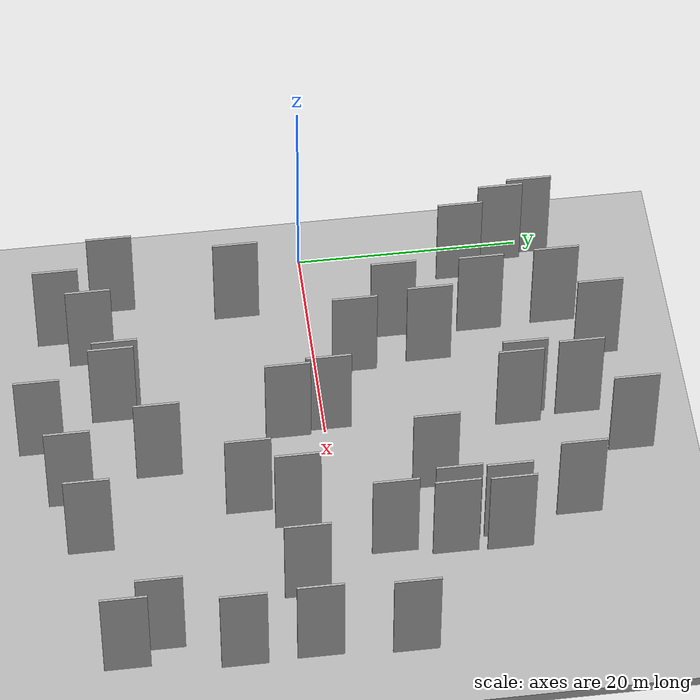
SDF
<?xml version="1.0" encoding="utf-8"?>

<sdf version="1.6">

   <world name="default">

      <gui fullscreen="0">

         <camera name="user_camera">

            <pose>-15 0 4.57585 0 0 0</pose>

            <view_controller>orbit</view_controller>

         </camera>

      </gui>

      <scene>

         <sky>

           <clouds>

             <speed>12</speed>

           </clouds>

         </sky>

         <ambient>0.4 0.4 0.4 1</ambient>

         <background>0.7 0.7 0.7 1</background>

         <shadows>1</shadows>

      </scene>

      <gravity>0 0 -9.8066</gravity>

      <magnetic_field>6e-06 2.3e-05 -4.2e-05</magnetic_field>

      <physics default="0" name="default_physics" type="ode">

         <ode>

            <solver>

               <type>quick</type>

               <iters>10</iters>

               <sor>1.0</sor>

               <use_dynamic_moi_rescaling>0</use_dynamic_moi_rescaling>

            </solver>

            <constraints>

               <cfm>0</cfm>

               <erp>0.2</erp>

               <contact_max_correcting_vel>100</contact_max_correcting_vel>

               <contact_surface_layer>0.001</contact_surface_layer>

            </constraints>

         </ode>

         <max_step_size>0.004</max_step_size>

         <real_time_factor>1</real_time_factor>

         <real_time_update_rate>250</real_time_update_rate>

      </physics>

      <light name="sun" type="directional">

         <cast_shadows>1</cast_shadows>

         <pose>0 0 10 0 0 0</pose>

         <diffuse>0.8 0.8 0.8 1</diffuse>

         <specular>0.2 0.2 0.2 1</specular>

         <attenuation>

            <range>1000</range>

            <constant>0.9</constant>

            <linear>0.01</linear>

            <quadratic>0.001</quadratic>

         </attenuation>

         <direction>-0.5 0.1 -0.9</direction>

      </light>

      <include>

         <name>ground_plane_1</name>

         <uri>model://HANNAS_ground_plane</uri>

         <pose>0 0 0  0 0 0</pose>

      </include>

      <include>

         <name>ground_plane_2</name>

         <uri>model://HANNAS_ground_plane</uri>

         <pose>100 0 0  0 0 0</pose>

      </include>

      <model name="HANNAS_wall_1">

         <static>1</static>

         <pose frame="">43.2385 -16.6148 2.5 0.000000 0.000000 1.570796</pose>

         <link name="link">

            <pose frame="">0 0 5.00 0 0 0</pose>

            <collision name="collision">

               <geometry>

                  <box>

                     <size>4.00 0.2 10.00</size>

                  </box>

               </geometry>

               <max_contacts>10</max_contacts>

               <surface>

                  <contact>

                     <ode/>

                  </contact>

                  <bounce/>

                  <friction>

                     <torsional>

                        <ode/>

                     </torsional>

                     <ode/>

                  </friction>

               </surface>

            </collision>

            <visual name="visual">

               <cast_shadows>0</cast_shadows>

               <geometry>

                  <box>

                     <size>4.00 0.2 10.00</size>

                  </box>

               </geometry>

               <material>

                  <script>

                     <uri>model://HANNAS_wall/materials/scripts</uri>

                     <uri>model://HANNAS_wall/materials/textures</uri>

                     <name>vrc/HANNAS_wall</name>

                  </script>

               </material>

            </visual>

            <self_collide>0</self_collide>

            <enable_wind>0</enable_wind>

            <kinematic>0</kinematic>

         </link>

      </model>

      <model name="HANNAS_wall_2">

         <static>1</static>

         <pose frame="">21.4742 0.1918 2.5 0.000000 0.000000 1.570796</pose>

         <link name="link">

            <pose frame="">0 0 5.00 0 0 0</pose>

            <collision name="collision">

               <geometry>

                  <box>

                     <size>4.00 0.2 10.00</size>

                  </box>

               </geometry>

               <max_contacts>10</max_contacts>

               <surface>

                  <contact>

                     <ode/>

                  </contact>

                  <bounce/>

                  <friction>

                     <torsional>

                        <ode/>

                     </torsional>

                     <ode/>

                  </friction>

               </surface>

            </collision>

            <visual name="visual">

               <cast_shadows>0</cast_shadows>

               <geometry>

                  <box>

                     <size>4.00 0.2 10.00</size>

                  </box>

               </geometry>

               <material>

                  <script>

                     <uri>model://HANNAS_wall/materials/scripts</uri>

                     <uri>model://HANNAS_wall/materials/textures</uri>

                     <name>vrc/HANNAS_wall</name>

                  </script>

               </material>

            </visual>

            <self_collide>0</self_collide>

            <enable_wind>0</enable_wind>

            <kinematic>0</kinematic>

         </link>

      </model>

      <model name="HANNAS_wall_3">

         <static>1</static>

         <pose frame="">11.6124 7.1430 2.5 0.000000 0.000000 1.570796</pose>

         <link name="link">

            <pose frame="">0 0 5.00 0 0 0</pose>

            <collision name="collision">

               <geometry>

                  <box>

                     <size>4.00 0.2 10.00</size>

                  </box>

               </geometry>

               <max_contacts>10</max_contacts>

               <surface>

                  <contact>

                     <ode/>

                  </contact>

                  <bounce/>

                  <friction>

                     <torsional>

                        <ode/>

                     </torsional>

                     <ode/>

                  </friction>

               </surface>

            </collision>

            <visual name="visual">

               <cast_shadows>0</cast_shadows>

               <geometry>

                  <box>

                     <size>4.00 0.2 10.00</size>

                  </box>

               </geometry>

               <material>

                  <script>

                     <uri>model://HANNAS_wall/materials/scripts</uri>

                     <uri>model://HANNAS_wall/materials/textures</uri>

                     <name>vrc/HANNAS_wall</name>

                  </script>

               </material>

            </visual>

            <self_collide>0</self_collide>

            <enable_wind>0</enable_wind>

            <kinematic>0</kinematic>

         </link>

      </model>

      <model name="HANNAS_wall_4">

         <static>1</static>

         <pose frame="">3.8051 17.7990 2.5 0.000000 0.000000 1.570796</pose>

         <link name="link">

            <pose frame="">0 0 5.00 0 0 0</pose>

            <collision name="collision">

               <geometry>

                  <box>

                     <size>4.00 0.2 10.00</size>

                  </box>

               </geometry>

               <max_contacts>10</max_contacts>

               <surface>

                  <contact>

                     <ode/>

                  </contact>

                  <bounce/>

                  <friction>

                     <torsional>

                        <ode/>

                     </torsional>

                     <ode/>

                  </friction>

               </surface>

            </collision>

            <visual name="visual">

               <cast_shadows>0</cast_shadows>

               <geometry>

                  <box>

                     <size>4.00 0.2 10.00</size>

                  </box>

               </geometry>

               <material>

                  <script>

                     <uri>model://HANNAS_wall/materials/scripts</uri>

                     <uri>model://HANNAS_wall/materials/textures</uri>

                     <name>vrc/HANNAS_wall</name>

                  </script>

               </material>

            </visual>

            <self_collide>0</self_collide>

            <enable_wind>0</enable_wind>

            <kinematic>0</kinematic>

         </link>

      </model>

      <model name="HANNAS_wall_5">

         <static>1</static>

         <pose frame="">17.5245 -18.0803 2.5 0.000000 0.000000 1.570796</pose>

         <link name="link">

            <pose frame="">0 0 5.00 0 0 0</pose>

            <collision name="collision">

               <geometry>

                  <box>

                     <size>4.00 0.2 10.00</size>

                  </box>

               </geometry>

               <max_contacts>10</max_contacts>

               <surface>

                  <contact>

                     <ode/>

                  </contact>

                  <bounce/>

                  <friction>

                     <torsional>

                        <ode/>

                     </torsional>

                     <ode/>

                  </friction>

               </surface>

            </collision>

            <visual name="visual">

               <cast_shadows>0</cast_shadows>

               <geometry>

                  <box>

                     <size>4.00 0.2 10.00</size>

                  </box>

               </geometry>

               <material>

                  <script>

                     <uri>model://HANNAS_wall/materials/scripts</uri>

                     <uri>model://HANNAS_wall/materials/textures</uri>

                     <name>vrc/HANNAS_wall</name>

                  </script>

               </material>

            </visual>

            <self_collide>0</self_collide>

            <enable_wind>0</enable_wind>

            <kinematic>0</kinematic>

         </link>

      </model>

      <model name="HANNAS_wall_6">

         <static>1</static>

         <pose frame="">14.7290 9.9586 2.5 0.000000 0.000000 1.570796</pose>

         <link name="link">

            <pose frame="">0 0 5.00 0 0 0</pose>

            <collision name="collision">

               <geometry>

                  <box>

                     <size>4.00 0.2 10.00</size>

                  </box>

               </geometry>

               <max_contacts>10</max_contacts>

               <surface>

                  <contact>

                     <ode/>

                  </contact>

                  <bounce/>

                  <friction>

                     <torsional>

                        <ode/>

                     </torsional>

                     <ode/>

                  </friction>

               </surface>

            </collision>

            <visual name="visual">

               <cast_shadows>0</cast_shadows>

               <geometry>

                  <box>

                     <size>4.00 0.2 10.00</size>

                  </box>

               </geometry>

               <material>

                  <script>

                     <uri>model://HANNAS_wall/materials/scripts</uri>

                     <uri>model://HANNAS_wall/materials/textures</uri>

                     <name>vrc/HANNAS_wall</name>

                  </script>

               </material>

            </visual>

            <self_collide>0</self_collide>

            <enable_wind>0</enable_wind>

            <kinematic>0</kinematic>

         </link>

      </model>

      <model name="HANNAS_wall_7">

         <static>1</static>

         <pose frame="">22.2468 22.2439 2.5 0.000000 0.000000 1.570796</pose>

         <link name="link">

            <pose frame="">0 0 5.00 0 0 0</pose>

            <collision name="collision">

               <geometry>

                  <box>

                     <size>4.00 0.2 10.00</size>

                  </box>

               </geometry>

               <max_contacts>10</max_contacts>

               <surface>

                  <contact>

                     <ode/>

                  </contact>

                  <bounce/>

                  <friction>

                     <torsional>

                        <ode/>

                     </torsional>

                     <ode/>

                  </friction>

               </surface>

            </collision>

            <visual name="visual">

               <cast_shadows>0</cast_shadows>

               <geometry>

                  <box>

                     <size>4.00 0.2 10.00</size>

                  </box>

               </geometry>

               <material>

                  <script>

                     <uri>model://HANNAS_wall/materials/scripts</uri>

                     <uri>model://HANNAS_wall/materials/textures</uri>

                     <name>vrc/HANNAS_wall</name>

                  </script>

               </material>

            </visual>

            <self_collide>0</self_collide>

            <enable_wind>0</enable_wind>

            <kinematic>0</kinematic>

         </link>

      </model>

      <model name="HANNAS_wall_8">

         <static>1</static>

         <pose frame="">15.1997 3.2499 2.5 0.000000 0.000000 1.570796</pose>

         <link name="link">

            <pose frame="">0 0 5.00 0 0 0</pose>

            <collision name="collision">

               <geometry>

                  <box>

                     <size>4.00 0.2 10.00</size>

                  </box>

               </geometry>

               <max_contacts>10</max_contacts>

               <surface>

                  <contact>

                     <ode/>

                  </contact>

                  <bounce/>

                  <friction>

                     <torsional>

                        <ode/>

                     </torsional>

                     <ode/>

                  </friction>

               </surface>

            </collision>

            <visual name="visual">

               <cast_shadows>0</cast_shadows>

               <geometry>

                  <box>

                     <size>4.00 0.2 10.00</size>

                  </box>

               </geometry>

               <material>

                  <script>

                     <uri>model://HANNAS_wall/materials/scripts</uri>

                     <uri>model://HANNAS_wall/materials/textures</uri>

                     <name>vrc/HANNAS_wall</name>

                  </script>

               </material>

            </visual>

            <self_collide>0</self_collide>

            <enable_wind>0</enable_wind>

            <kinematic>0</kinematic>

         </link>

      </model>

      <model name="HANNAS_wall_9">

         <static>1</static>

         <pose frame="">15.8078 24.9222 2.5 0.000000 0.000000 1.570796</pose>

         <link name="link">

            <pose frame="">0 0 5.00 0 0 0</pose>

            <collision name="collision">

               <geometry>

                  <box>

                     <size>4.00 0.2 10.00</size>

                  </box>

               </geometry>

               <max_contacts>10</max_contacts>

               <surface>

                  <contact>

                     <ode/>

                  </contact>

                  <bounce/>

                  <friction>

                     <torsional>

                        <ode/>

                     </torsional>

                     <ode/>

                  </friction>

               </surface>

            </collision>

            <visual name="visual">

               <cast_shadows>0</cast_shadows>

               <geometry>

                  <box>

                     <size>4.00 0.2 10.00</size>

                  </box>

               </geometry>

               <material>

                  <script>

                     <uri>model://HANNAS_wall/materials/scripts</uri>

                     <uri>model://HANNAS_wall/materials/textures</uri>

                     <name>vrc/HANNAS_wall</name>

                  </script>

               </material>

            </visual>

            <self_collide>0</self_collide>

            <enable_wind>0</enable_wind>

            <kinematic>0</kinematic>

         </link>

      </model>

      <model name="HANNAS_wall_10">

         <static>1</static>

         <pose frame="">35.5209 4.2593 2.5 0.000000 0.000000 1.570796</pose>

         <link name="link">

            <pose frame="">0 0 5.00 0 0 0</pose>

            <collision name="collision">

               <geometry>

                  <box>

                     <size>4.00 0.2 10.00</size>

                  </box>

               </geometry>

               <max_contacts>10</max_contacts>

               <surface>

                  <contact>

                     <ode/>

                  </contact>

                  <bounce/>

                  <friction>

                     <torsional>

                        <ode/>

                     </torsional>

                     <ode/>

                  </friction>

               </surface>

            </collision>

            <visual name="visual">

               <cast_shadows>0</cast_shadows>

               <geometry>

                  <box>

                     <size>4.00 0.2 10.00</size>

                  </box>

               </geometry>

               <material>

                  <script>

                     <uri>model://HANNAS_wall/materials/scripts</uri>

                     <uri>model://HANNAS_wall/materials/textures</uri>

                     <name>vrc/HANNAS_wall</name>

                  </script>

               </material>

            </visual>

            <self_collide>0</self_collide>

            <enable_wind>0</enable_wind>

            <kinematic>0</kinematic>

         </link>

      </model>

      <model name="HANNAS_wall_11">

         <static>1</static>

         <pose frame="">21.7479 17.3656 2.5 0.000000 0.000000 1.570796</pose>

         <link name="link">

            <pose frame="">0 0 5.00 0 0 0</pose>

            <collision name="collision">

               <geometry>

                  <box>

                     <size>4.00 0.2 10.00</size>

                  </box>

               </geometry>

               <max_contacts>10</max_contacts>

               <surface>

                  <contact>

                     <ode/>

                  </contact>

                  <bounce/>

                  <friction>

                     <torsional>

                        <ode/>

                     </torsional>

                     <ode/>

                  </friction>

               </surface>

            </collision>

            <visual name="visual">

               <cast_shadows>0</cast_shadows>

               <geometry>

                  <box>

                     <size>4.00 0.2 10.00</size>

                  </box>

               </geometry>

               <material>

                  <script>

                     <uri>model://HANNAS_wall/materials/scripts</uri>

                     <uri>model://HANNAS_wall/materials/textures</uri>

                     <name>vrc/HANNAS_wall</name>

                  </script>

               </material>

            </visual>

            <self_collide>0</self_collide>

            <enable_wind>0</enable_wind>

            <kinematic>0</kinematic>

         </link>

      </model>

      <model name="HANNAS_wall_12">

         <static>1</static>

         <pose frame="">29.7383 -7.7448 2.5 0.000000 0.000000 1.570796</pose>

         <link name="link">

            <pose frame="">0 0 5.00 0 0 0</pose>

            <collision name="collision">

               <geometry>

                  <box>

                     <size>4.00 0.2 10.00</size>

                  </box>

               </geometry>

               <max_contacts>10</max_contacts>

               <surface>

                  <contact>

                     <ode/>

                  </contact>

                  <bounce/>

                  <friction>

                     <torsional>

                        <ode/>

                     </torsional>

                     <ode/>

                  </friction>

               </surface>

            </collision>

            <visual name="visual">

               <cast_shadows>0</cast_shadows>

               <geometry>

                  <box>

                     <size>4.00 0.2 10.00</size>

                  </box>

               </geometry>

               <material>

                  <script>

                     <uri>model://HANNAS_wall/materials/scripts</uri>

                     <uri>model://HANNAS_wall/materials/textures</uri>

                     <name>vrc/HANNAS_wall</name>

                  </script>

               </material>

            </visual>

            <self_collide>0</self_collide>

            <enable_wind>0</enable_wind>

            <kinematic>0</kinematic>

         </link>

      </model>

      <model name="HANNAS_wall_13">

         <static>1</static>

         <pose frame="">5.5190 13.9306 2.5 0.000000 0.000000 1.570796</pose>

         <link name="link">

            <pose frame="">0 0 5.00 0 0 0</pose>

            <collision name="collision">

               <geometry>

                  <box>

                     <size>4.00 0.2 10.00</size>

                  </box>

               </geometry>

               <max_contacts>10</max_contacts>

               <surface>

                  <contact>

                     <ode/>

                  </contact>

                  <bounce/>

                  <friction>

                     <torsional>

                        <ode/>

                     </torsional>

                     <ode/>

                  </friction>

               </surface>

            </collision>

            <visual name="visual">

               <cast_shadows>0</cast_shadows>

               <geometry>

                  <box>

                     <size>4.00 0.2 10.00</size>

                  </box>

               </geometry>

               <material>

                  <script>

                     <uri>model://HANNAS_wall/materials/scripts</uri>

                     <uri>model://HANNAS_wall/materials/textures</uri>

                     <name>vrc/HANNAS_wall</name>

                  </script>

               </material>

            </visual>

            <self_collide>0</self_collide>

            <enable_wind>0</enable_wind>

            <kinematic>0</kinematic>

         </link>

      </model>

      <model name="HANNAS_wall_14">

         <static>1</static>

         <pose frame="">45.9590 4.7198 2.5 0.000000 0.000000 1.570796</pose>

         <link name="link">

            <pose frame="">0 0 5.00 0 0 0</pose>

            <collision name="collision">

               <geometry>

                  <box>

                     <size>4.00 0.2 10.00</size>

                  </box>

               </geometry>

               <max_contacts>10</max_contacts>

               <surface>

                  <contact>

                     <ode/>

                  </contact>

                  <bounce/>

                  <friction>

                     <torsional>

                        <ode/>

                     </torsional>

                     <ode/>

                  </friction>

               </surface>

            </collision>

            <visual name="visual">

               <cast_shadows>0</cast_shadows>

               <geometry>

                  <box>

                     <size>4.00 0.2 10.00</size>

                  </box>

               </geometry>

               <material>

                  <script>

                     <uri>model://HANNAS_wall/materials/scripts</uri>

                     <uri>model://HANNAS_wall/materials/textures</uri>

                     <name>vrc/HANNAS_wall</name>

                  </script>

               </material>

            </visual>

            <self_collide>0</self_collide>

            <enable_wind>0</enable_wind>

            <kinematic>0</kinematic>

         </link>

      </model>

      <model name="HANNAS_wall_15">

         <static>1</static>

         <pose frame="">11.7948 14.9280 2.5 0.000000 0.000000 1.570796</pose>

         <link name="link">

            <pose frame="">0 0 5.00 0 0 0</pose>

            <collision name="collision">

               <geometry>

                  <box>

                     <size>4.00 0.2 10.00</size>

                  </box>

               </geometry>

               <max_contacts>10</max_contacts>

               <surface>

                  <contact>

                     <ode/>

                  </contact>

                  <bounce/>

                  <friction>

                     <torsional>

                        <ode/>

                     </torsional>

                     <ode/>

                  </friction>

               </surface>

            </collision>

            <visual name="visual">

               <cast_shadows>0</cast_shadows>

               <geometry>

                  <box>

                     <size>4.00 0.2 10.00</size>

                  </box>

               </geometry>

               <material>

                  <script>

                     <uri>model://HANNAS_wall/materials/scripts</uri>

                     <uri>model://HANNAS_wall/materials/textures</uri>

                     <name>vrc/HANNAS_wall</name>

                  </script>

               </material>

            </visual>

            <self_collide>0</self_collide>

            <enable_wind>0</enable_wind>

            <kinematic>0</kinematic>

         </link>

      </model>

      <model name="HANNAS_wall_16">

         <static>1</static>

         <pose frame="">45.7403 -9.8213 2.5 0.000000 0.000000 1.570796</pose>

         <link name="link">

            <pose frame="">0 0 5.00 0 0 0</pose>

            <collision name="collision">

               <geometry>

                  <box>

                     <size>4.00 0.2 10.00</size>

                  </box>

               </geometry>

               <max_contacts>10</max_contacts>

               <surface>

                  <contact>

                     <ode/>

                  </contact>

                  <bounce/>

                  <friction>

                     <torsional>

                        <ode/>

                     </torsional>

                     <ode/>

                  </friction>

               </surface>

            </collision>

            <visual name="visual">

               <cast_shadows>0</cast_shadows>

               <geometry>

                  <box>

                     <size>4.00 0.2 10.00</size>

                  </box>

               </geometry>

               <material>

                  <script>

                     <uri>model://HANNAS_wall/materials/scripts</uri>

                     <uri>model://HANNAS_wall/materials/textures</uri>

                     <name>vrc/HANNAS_wall</name>

                  </script>

               </material>

            </visual>

            <self_collide>0</self_collide>

            <enable_wind>0</enable_wind>

            <kinematic>0</kinematic>

         </link>

      </model>

      <model name="HANNAS_wall_17">

         <static>1</static>

         <pose frame="">34.8462 14.0735 2.5 0.000000 0.000000 1.570796</pose>

         <link name="link">

            <pose frame="">0 0 5.00 0 0 0</pose>

            <collision name="collision">

               <geometry>

                  <box>

                     <size>4.00 0.2 10.00</size>

                  </box>

               </geometry>

               <max_contacts>10</max_contacts>

               <surface>

                  <contact>

                     <ode/>

                  </contact>

                  <bounce/>

                  <friction>

                     <torsional>

                        <ode/>

                     </torsional>

                     <ode/>

                  </friction>

               </surface>

            </collision>

            <visual name="visual">

               <cast_shadows>0</cast_shadows>

               <geometry>

                  <box>

                     <size>4.00 0.2 10.00</size>

                  </box>

               </geometry>

               <material>

                  <script>

                     <uri>model://HANNAS_wall/materials/scripts</uri>

                     <uri>model://HANNAS_wall/materials/textures</uri>

                     <name>vrc/HANNAS_wall</name>

                  </script>

               </material>

            </visual>

            <self_collide>0</self_collide>

            <enable_wind>0</enable_wind>

            <kinematic>0</kinematic>

         </link>

      </model>

      <model name="HANNAS_wall_18">

         <static>1</static>

         <pose frame="">34.6145 9.7718 2.5 0.000000 0.000000 1.570796</pose>

         <link name="link">

            <pose frame="">0 0 5.00 0 0 0</pose>

            <collision name="collision">

               <geometry>

                  <box>

                     <size>4.00 0.2 10.00</size>

                  </box>

               </geometry>

               <max_contacts>10</max_contacts>

               <surface>

                  <contact>

                     <ode/>

                  </contact>

                  <bounce/>

                  <friction>

                     <torsional>

                        <ode/>

                     </torsional>

                     <ode/>

                  </friction>

               </surface>

            </collision>

            <visual name="visual">

               <cast_shadows>0</cast_shadows>

               <geometry>

                  <box>

                     <size>4.00 0.2 10.00</size>

                  </box>

               </geometry>

               <material>

                  <script>

                     <uri>model://HANNAS_wall/materials/scripts</uri>

                     <uri>model://HANNAS_wall/materials/textures</uri>

                     <name>vrc/HANNAS_wall</name>

                  </script>

               </material>

            </visual>

            <self_collide>0</self_collide>

            <enable_wind>0</enable_wind>

            <kinematic>0</kinematic>

         </link>

      </model>

      <model name="HANNAS_wall_19">

         <static>1</static>

         <pose frame="">45.5823 -3.3655 2.5 0.000000 0.000000 1.570796</pose>

         <link name="link">

            <pose frame="">0 0 5.00 0 0 0</pose>

            <collision name="collision">

               <geometry>

                  <box>

                     <size>4.00 0.2 10.00</size>

                  </box>

               </geometry>

               <max_contacts>10</max_contacts>

               <surface>

                  <contact>

                     <ode/>

                  </contact>

                  <bounce/>

                  <friction>

                     <torsional>

                        <ode/>

                     </torsional>

                     <ode/>

                  </friction>

               </surface>

            </collision>

            <visual name="visual">

               <cast_shadows>0</cast_shadows>

               <geometry>

                  <box>

                     <size>4.00 0.2 10.00</size>

                  </box>

               </geometry>

               <material>

                  <script>

                     <uri>model://HANNAS_wall/materials/scripts</uri>

                     <uri>model://HANNAS_wall/materials/textures</uri>

                     <name>vrc/HANNAS_wall</name>

                  </script>

               </material>

            </visual>

            <self_collide>0</self_collide>

            <enable_wind>0</enable_wind>

            <kinematic>0</kinematic>

         </link>

      </model>

      <model name="HANNAS_wall_20">

         <static>1</static>

         <pose frame="">33.2724 20.6800 2.5 0.000000 0.000000 1.570796</pose>

         <link name="link">

            <pose frame="">0 0 5.00 0 0 0</pose>

            <collision name="collision">

               <geometry>

                  <box>

                     <size>4.00 0.2 10.00</size>

                  </box>

               </geometry>

               <max_contacts>10</max_contacts>

               <surface>

                  <contact>

                     <ode/>

                  </contact>

                  <bounce/>

                  <friction>

                     <torsional>

                        <ode/>

                     </torsional>

                     <ode/>

                  </friction>

               </surface>

            </collision>

            <visual name="visual">

               <cast_shadows>0</cast_shadows>

               <geometry>

                  <box>

                     <size>4.00 0.2 10.00</size>

                  </box>

               </geometry>

               <material>

                  <script>

                     <uri>model://HANNAS_wall/materials/scripts</uri>

                     <uri>model://HANNAS_wall/materials/textures</uri>

                     <name>vrc/HANNAS_wall</name>

                  </script>

               </material>

            </visual>

            <self_collide>0</self_collide>

            <enable_wind>0</enable_wind>

            <kinematic>0</kinematic>

         </link>

      </model>

      <model name="HANNAS_wall_21">

         <static>1</static>

         <pose frame="">5.7601 -17.5686 2.5 0.000000 0.000000 1.570796</pose>

         <link name="link">

            <pose frame="">0 0 5.00 0 0 0</pose>

            <collision name="collision">

               <geometry>

                  <box>

                     <size>4.00 0.2 10.00</size>

                  </box>

               </geometry>

               <max_contacts>10</max_contacts>

               <surface>

                  <contact>

                     <ode/>

                  </contact>

                  <bounce/>

                  <friction>

                     <torsional>

                        <ode/>

                     </torsional>

                     <ode/>

                  </friction>

               </surface>

            </collision>

            <visual name="visual">

               <cast_shadows>0</cast_shadows>

               <geometry>

                  <box>

                     <size>4.00 0.2 10.00</size>

                  </box>

               </geometry>

               <material>

                  <script>

                     <uri>model://HANNAS_wall/materials/scripts</uri>

                     <uri>model://HANNAS_wall/materials/textures</uri>

                     <name>vrc/HANNAS_wall</name>

                  </script>

               </material>

            </visual>

            <self_collide>0</self_collide>

            <enable_wind>0</enable_wind>

            <kinematic>0</kinematic>

         </link>

      </model>

      <model name="HANNAS_wall_22">

         <static>1</static>

         <pose frame="">3.2390 20.4464 2.5 0.000000 0.000000 1.570796</pose>

         <link name="link">

            <pose frame="">0 0 5.00 0 0 0</pose>

            <collision name="collision">

               <geometry>

                  <box>

                     <size>4.00 0.2 10.00</size>

                  </box>

               </geometry>

               <max_contacts>10</max_contacts>

               <surface>

                  <contact>

                     <ode/>

                  </contact>

                  <bounce/>

                  <friction>

                     <torsional>

                        <ode/>

                     </torsional>

                     <ode/>

                  </friction>

               </surface>

            </collision>

            <visual name="visual">

               <cast_shadows>0</cast_shadows>

               <geometry>

                  <box>

                     <size>4.00 0.2 10.00</size>

                  </box>

               </geometry>

               <material>

                  <script>

                     <uri>model://HANNAS_wall/materials/scripts</uri>

                     <uri>model://HANNAS_wall/materials/textures</uri>

                     <name>vrc/HANNAS_wall</name>

                  </script>

               </material>

            </visual>

            <self_collide>0</self_collide>

            <enable_wind>0</enable_wind>

            <kinematic>0</kinematic>

         </link>

      </model>

      <model name="HANNAS_wall_23">

         <static>1</static>

         <pose frame="">27.1002 -22.9911 2.5 0.000000 0.000000 1.570796</pose>

         <link name="link">

            <pose frame="">0 0 5.00 0 0 0</pose>

            <collision name="collision">

               <geometry>

                  <box>

                     <size>4.00 0.2 10.00</size>

                  </box>

               </geometry>

               <max_contacts>10</max_contacts>

               <surface>

                  <contact>

                     <ode/>

                  </contact>

                  <bounce/>

                  <friction>

                     <torsional>

                        <ode/>

                     </torsional>

                     <ode/>

                  </friction>

               </surface>

            </collision>

            <visual name="visual">

               <cast_shadows>0</cast_shadows>

               <geometry>

                  <box>

                     <size>4.00 0.2 10.00</size>

                  </box>

               </geometry>

               <material>

                  <script>

                     <uri>model://HANNAS_wall/materials/scripts</uri>

                     <uri>model://HANNAS_wall/materials/textures</uri>

                     <name>vrc/HANNAS_wall</name>

                  </script>

               </material>

            </visual>

            <self_collide>0</self_collide>

            <enable_wind>0</enable_wind>

            <kinematic>0</kinematic>

         </link>

      </model>

      <model name="HANNAS_wall_24">

         <static>1</static>

         <pose frame="">21.2344 -25.1447 2.5 0.000000 0.000000 1.570796</pose>

         <link name="link">

            <pose frame="">0 0 5.00 0 0 0</pose>

            <collision name="collision">

               <geometry>

                  <box>

                     <size>4.00 0.2 10.00</size>

                  </box>

               </geometry>

               <max_contacts>10</max_contacts>

               <surface>

                  <contact>

                     <ode/>

                  </contact>

                  <bounce/>

                  <friction>

                     <torsional>

                        <ode/>

                     </torsional>

                     <ode/>

                  </friction>

               </surface>

            </collision>

            <visual name="visual">

               <cast_shadows>0</cast_shadows>

               <geometry>

                  <box>

                     <size>4.00 0.2 10.00</size>

                  </box>

               </geometry>

               <material>

                  <script>

                     <uri>model://HANNAS_wall/materials/scripts</uri>

                     <uri>model://HANNAS_wall/materials/textures</uri>

                     <name>vrc/HANNAS_wall</name>

                  </script>

               </material>

            </visual>

            <self_collide>0</self_collide>

            <enable_wind>0</enable_wind>

            <kinematic>0</kinematic>

         </link>

      </model>

      <model name="HANNAS_wall_25">

         <static>1</static>

         <pose frame="">11.6593 -19.9149 2.5 0.000000 0.000000 1.570796</pose>

         <link name="link">

            <pose frame="">0 0 5.00 0 0 0</pose>

            <collision name="collision">

               <geometry>

                  <box>

                     <size>4.00 0.2 10.00</size>

                  </box>

               </geometry>

               <max_contacts>10</max_contacts>

               <surface>

                  <contact>

                     <ode/>

                  </contact>

                  <bounce/>

                  <friction>

                     <torsional>

                        <ode/>

                     </torsional>

                     <ode/>

                  </friction>

               </surface>

            </collision>

            <visual name="visual">

               <cast_shadows>0</cast_shadows>

               <geometry>

                  <box>

                     <size>4.00 0.2 10.00</size>

                  </box>

               </geometry>

               <material>

                  <script>

                     <uri>model://HANNAS_wall/materials/scripts</uri>

                     <uri>model://HANNAS_wall/materials/textures</uri>

                     <name>vrc/HANNAS_wall</name>

                  </script>

               </material>

            </visual>

            <self_collide>0</self_collide>

            <enable_wind>0</enable_wind>

            <kinematic>0</kinematic>

         </link>

      </model>

      <model name="HANNAS_wall_26">

         <static>1</static>

         <pose frame="">22.8054 16.8679 2.5 0.000000 0.000000 1.570796</pose>

         <link name="link">

            <pose frame="">0 0 5.00 0 0 0</pose>

            <collision name="collision">

               <geometry>

                  <box>

                     <size>4.00 0.2 10.00</size>

                  </box>

               </geometry>

               <max_contacts>10</max_contacts>

               <surface>

                  <contact>

                     <ode/>

                  </contact>

                  <bounce/>

                  <friction>

                     <torsional>

                        <ode/>

                     </torsional>

                     <ode/>

                  </friction>

               </surface>

            </collision>

            <visual name="visual">

               <cast_shadows>0</cast_shadows>

               <geometry>

                  <box>

                     <size>4.00 0.2 10.00</size>

                  </box>

               </geometry>

               <material>

                  <script>

                     <uri>model://HANNAS_wall/materials/scripts</uri>

                     <uri>model://HANNAS_wall/materials/textures</uri>

                     <name>vrc/HANNAS_wall</name>

                  </script>

               </material>

            </visual>

            <self_collide>0</self_collide>

            <enable_wind>0</enable_wind>

            <kinematic>0</kinematic>

         </link>

      </model>

      <model name="HANNAS_wall_27">

         <static>1</static>

         <pose frame="">7.8023 -6.5216 2.5 0.000000 0.000000 1.570796</pose>

         <link name="link">

            <pose frame="">0 0 5.00 0 0 0</pose>

            <collision name="collision">

               <geometry>

                  <box>

                     <size>4.00 0.2 10.00</size>

                  </box>

               </geometry>

               <max_contacts>10</max_contacts>

               <surface>

                  <contact>

                     <ode/>

                  </contact>

                  <bounce/>

                  <friction>

                     <torsional>

                        <ode/>

                     </torsional>

                     <ode/>

                  </friction>

               </surface>

            </collision>

            <visual name="visual">

               <cast_shadows>0</cast_shadows>

               <geometry>

                  <box>

                     <size>4.00 0.2 10.00</size>

                  </box>

               </geometry>

               <material>

                  <script>

                     <uri>model://HANNAS_wall/materials/scripts</uri>

                     <uri>model://HANNAS_wall/materials/textures</uri>

                     <name>vrc/HANNAS_wall</name>

                  </script>

               </material>

            </visual>

            <self_collide>0</self_collide>

            <enable_wind>0</enable_wind>

            <kinematic>0</kinematic>

         </link>

      </model>

      <model name="HANNAS_wall_28">

         <static>1</static>

         <pose frame="">39.2537 -3.7173 2.5 0.000000 0.000000 1.570796</pose>

         <link name="link">

            <pose frame="">0 0 5.00 0 0 0</pose>

            <collision name="collision">

               <geometry>

                  <box>

                     <size>4.00 0.2 10.00</size>

                  </box>

               </geometry>

               <max_contacts>10</max_contacts>

               <surface>

                  <contact>

                     <ode/>

                  </contact>

                  <bounce/>

                  <friction>

                     <torsional>

                        <ode/>

                     </torsional>

                     <ode/>

                  </friction>

               </surface>

            </collision>

            <visual name="visual">

               <cast_shadows>0</cast_shadows>

               <geometry>

                  <box>

                     <size>4.00 0.2 10.00</size>

                  </box>

               </geometry>

               <material>

                  <script>

                     <uri>model://HANNAS_wall/materials/scripts</uri>

                     <uri>model://HANNAS_wall/materials/textures</uri>

                     <name>vrc/HANNAS_wall</name>

                  </script>

               </material>

            </visual>

            <self_collide>0</self_collide>

            <enable_wind>0</enable_wind>

            <kinematic>0</kinematic>

         </link>

      </model>

      <model name="HANNAS_wall_29">

         <static>1</static>

         <pose frame="">36.1543 9.4478 2.5 0.000000 0.000000 1.570796</pose>

         <link name="link">

            <pose frame="">0 0 5.00 0 0 0</pose>

            <collision name="collision">

               <geometry>

                  <box>

                     <size>4.00 0.2 10.00</size>

                  </box>

               </geometry>

               <max_contacts>10</max_contacts>

               <surface>

                  <contact>

                     <ode/>

                  </contact>

                  <bounce/>

                  <friction>

                     <torsional>

                        <ode/>

                     </torsional>

                     <ode/>

                  </friction>

               </surface>

            </collision>

            <visual name="visual">

               <cast_shadows>0</cast_shadows>

               <geometry>

                  <box>

                     <size>4.00 0.2 10.00</size>

                  </box>

               </geometry>

               <material>

                  <script>

                     <uri>model://HANNAS_wall/materials/scripts</uri>

                     <uri>model://HANNAS_wall/materials/textures</uri>

                     <name>vrc/HANNAS_wall</name>

                  </script>

               </material>

            </visual>

            <self_collide>0</self_collide>

            <enable_wind>0</enable_wind>

            <kinematic>0</kinematic>

         </link>

      </model>

      <model name="HANNAS_wall_30">

         <static>1</static>

         <pose frame="">9.0304 -22.5887 2.5 0.000000 0.000000 1.570796</pose>

         <link name="link">

            <pose frame="">0 0 5.00 0 0 0</pose>

            <collision name="collision">

               <geometry>

                  <box>

                     <size>4.00 0.2 10.00</size>

                  </box>

               </geometry>

               <max_contacts>10</max_contacts>

               <surface>

                  <contact>

                     <ode/>

                  </contact>

                  <bounce/>

                  <friction>

                     <torsional>

                        <ode/>

                     </torsional>

                     <ode/>

                  </friction>

               </surface>

            </collision>

            <visual name="visual">

               <cast_shadows>0</cast_shadows>

               <geometry>

                  <box>

                     <size>4.00 0.2 10.00</size>

                  </box>

               </geometry>

               <material>

                  <script>

                     <uri>model://HANNAS_wall/materials/scripts</uri>

                     <uri>model://HANNAS_wall/materials/textures</uri>

                     <name>vrc/HANNAS_wall</name>

                  </script>

               </material>

            </visual>

            <self_collide>0</self_collide>

            <enable_wind>0</enable_wind>

            <kinematic>0</kinematic>

         </link>

      </model>

      <model name="HANNAS_wall_31">

         <static>1</static>

         <pose frame="">44.8850 -19.6930 2.5 0.000000 0.000000 1.570796</pose>

         <link name="link">

            <pose frame="">0 0 5.00 0 0 0</pose>

            <collision name="collision">

               <geometry>

                  <box>

                     <size>4.00 0.2 10.00</size>

                  </box>

               </geometry>

               <max_contacts>10</max_contacts>

               <surface>

                  <contact>

                     <ode/>

                  </contact>

                  <bounce/>

                  <friction>

                     <torsional>

                        <ode/>

                     </torsional>

                     <ode/>

                  </friction>

               </surface>

            </collision>

            <visual name="visual">

               <cast_shadows>0</cast_shadows>

               <geometry>

                  <box>

                     <size>4.00 0.2 10.00</size>

                  </box>

               </geometry>

               <material>

                  <script>

                     <uri>model://HANNAS_wall/materials/scripts</uri>

                     <uri>model://HANNAS_wall/materials/textures</uri>

                     <name>vrc/HANNAS_wall</name>

                  </script>

               </material>

            </visual>

            <self_collide>0</self_collide>

            <enable_wind>0</enable_wind>

            <kinematic>0</kinematic>

         </link>

      </model>

      <model name="HANNAS_wall_32">

         <static>1</static>

         <pose frame="">18.3142 -18.4697 2.5 0.000000 0.000000 1.570796</pose>

         <link name="link">

            <pose frame="">0 0 5.00 0 0 0</pose>

            <collision name="collision">

               <geometry>

                  <box>

                     <size>4.00 0.2 10.00</size>

                  </box>

               </geometry>

               <max_contacts>10</max_contacts>

               <surface>

                  <contact>

                     <ode/>

                  </contact>

                  <bounce/>

                  <friction>

                     <torsional>

                        <ode/>

                     </torsional>

                     <ode/>

                  </friction>

               </surface>

            </collision>

            <visual name="visual">

               <cast_shadows>0</cast_shadows>

               <geometry>

                  <box>

                     <size>4.00 0.2 10.00</size>

                  </box>

               </geometry>

               <material>

                  <script>

                     <uri>model://HANNAS_wall/materials/scripts</uri>

                     <uri>model://HANNAS_wall/materials/textures</uri>

                     <name>vrc/HANNAS_wall</name>

                  </script>

               </material>

            </visual>

            <self_collide>0</self_collide>

            <enable_wind>0</enable_wind>

            <kinematic>0</kinematic>

         </link>

      </model>

      <model name="HANNAS_wall_33">

         <static>1</static>

         <pose frame="">36.2570 14.2014 2.5 0.000000 0.000000 1.570796</pose>

         <link name="link">

            <pose frame="">0 0 5.00 0 0 0</pose>

            <collision name="collision">

               <geometry>

                  <box>

                     <size>4.00 0.2 10.00</size>

                  </box>

               </geometry>

               <max_contacts>10</max_contacts>

               <surface>

                  <contact>

                     <ode/>

                  </contact>

                  <bounce/>

                  <friction>

                     <torsional>

                        <ode/>

                     </torsional>

                     <ode/>

                  </friction>

               </surface>

            </collision>

            <visual name="visual">

               <cast_shadows>0</cast_shadows>

               <geometry>

                  <box>

                     <size>4.00 0.2 10.00</size>

                  </box>

               </geometry>

               <material>

                  <script>

                     <uri>model://HANNAS_wall/materials/scripts</uri>

                     <uri>model://HANNAS_wall/materials/textures</uri>

                     <name>vrc/HANNAS_wall</name>

                  </script>

               </material>

            </visual>

            <self_collide>0</self_collide>

            <enable_wind>0</enable_wind>

            <kinematic>0</kinematic>

         </link>

      </model>

      <model name="HANNAS_wall_34">

         <static>1</static>

         <pose frame="">11.6358 21.6472 2.5 0.000000 0.000000 1.570796</pose>

         <link name="link">

            <pose frame="">0 0 5.00 0 0 0</pose>

            <collision name="collision">

               <geometry>

                  <box>

                     <size>4.00 0.2 10.00</size>

                  </box>

               </geometry>

               <max_contacts>10</max_contacts>

               <surface>

                  <contact>

                     <ode/>

                  </contact>

                  <bounce/>

                  <friction>

                     <torsional>

                        <ode/>

                     </torsional>

                     <ode/>

                  </friction>

               </surface>

            </collision>

            <visual name="visual">

               <cast_shadows>0</cast_shadows>

               <geometry>

                  <box>

                     <size>4.00 0.2 10.00</size>

                  </box>

               </geometry>

               <material>

                  <script>

                     <uri>model://HANNAS_wall/materials/scripts</uri>

                     <uri>model://HANNAS_wall/materials/textures</uri>

                     <name>vrc/HANNAS_wall</name>

                  </script>

               </material>

            </visual>

            <self_collide>0</self_collide>

            <enable_wind>0</enable_wind>

            <kinematic>0</kinematic>

         </link>

      </model>

      <model name="HANNAS_wall_35">

         <static>1</static>

         <pose frame="">21.9230 -3.4317 2.5 0.000000 0.000000 1.570796</pose>

         <link name="link">

            <pose frame="">0 0 5.00 0 0 0</pose>

            <collision name="collision">

               <geometry>

                  <box>

                     <size>4.00 0.2 10.00</size>

                  </box>

               </geometry>

               <max_contacts>10</max_contacts>

               <surface>

                  <contact>

                     <ode/>

                  </contact>

                  <bounce/>

                  <friction>

                     <torsional>

                        <ode/>

                     </torsional>

                     <ode/>

                  </friction>

               </surface>

            </collision>

            <visual name="visual">

               <cast_shadows>0</cast_shadows>

               <geometry>

                  <box>

                     <size>4.00 0.2 10.00</size>

                  </box>

               </geometry>

               <material>

                  <script>

                     <uri>model://HANNAS_wall/materials/scripts</uri>

                     <uri>model://HANNAS_wall/materials/textures</uri>

                     <name>vrc/HANNAS_wall</name>

                  </script>

               </material>

            </visual>

            <self_collide>0</self_collide>

            <enable_wind>0</enable_wind>

            <kinematic>0</kinematic>

         </link>

      </model>

      <model name="HANNAS_wall_36">

         <static>1</static>

         <pose frame="">32.4064 -21.7480 2.5 0.000000 0.000000 1.570796</pose>

         <link name="link">

            <pose frame="">0 0 5.00 0 0 0</pose>

            <collision name="collision">

               <geometry>

                  <box>

                     <size>4.00 0.2 10.00</size>

                  </box>

               </geometry>

               <max_contacts>10</max_contacts>

               <surface>

                  <contact>

                     <ode/>

                  </contact>

                  <bounce/>

                  <friction>

                     <torsional>

                        <ode/>

                     </torsional>

                     <ode/>

                  </friction>

               </surface>

            </collision>

            <visual name="visual">

               <cast_shadows>0</cast_shadows>

               <geometry>

                  <box>

                     <size>4.00 0.2 10.00</size>

                  </box>

               </geometry>

               <material>

                  <script>

                     <uri>model://HANNAS_wall/materials/scripts</uri>

                     <uri>model://HANNAS_wall/materials/textures</uri>

                     <name>vrc/HANNAS_wall</name>

                  </script>

               </material>

            </visual>

            <self_collide>0</self_collide>

            <enable_wind>0</enable_wind>

            <kinematic>0</kinematic>

         </link>

      </model>

      <model name="HANNAS_wall_37">

         <static>1</static>

         <pose frame="">26.8143 26.3246 2.5 0.000000 0.000000 1.570796</pose>

         <link name="link">

            <pose frame="">0 0 5.00 0 0 0</pose>

            <collision name="collision">

               <geometry>

                  <box>

                     <size>4.00 0.2 10.00</size>

                  </box>

               </geometry>

               <max_contacts>10</max_contacts>

               <surface>

                  <contact>

                     <ode/>

                  </contact>

                  <bounce/>

                  <friction>

                     <torsional>

                        <ode/>

                     </torsional>

                     <ode/>

                  </friction>

               </surface>

            </collision>

            <visual name="visual">

               <cast_shadows>0</cast_shadows>

               <geometry>

                  <box>

                     <size>4.00 0.2 10.00</size>

                  </box>

               </geometry>

               <material>

                  <script>

                     <uri>model://HANNAS_wall/materials/scripts</uri>

                     <uri>model://HANNAS_wall/materials/textures</uri>

                     <name>vrc/HANNAS_wall</name>

                  </script>

               </material>

            </visual>

            <self_collide>0</self_collide>

            <enable_wind>0</enable_wind>

            <kinematic>0</kinematic>

         </link>

      </model>

      <model name="HANNAS_wall_38">

         <static>1</static>

         <pose frame="">28.9399 8.6210 2.5 0.000000 0.000000 1.570796</pose>

         <link name="link">

            <pose frame="">0 0 5.00 0 0 0</pose>

            <collision name="collision">

               <geometry>

                  <box>

                     <size>4.00 0.2 10.00</size>

                  </box>

               </geometry>

               <max_contacts>10</max_contacts>

               <surface>

                  <contact>

                     <ode/>

                  </contact>

                  <bounce/>

                  <friction>

                     <torsional>

                        <ode/>

                     </torsional>

                     <ode/>

                  </friction>

               </surface>

            </collision>

            <visual name="visual">

               <cast_shadows>0</cast_shadows>

               <geometry>

                  <box>

                     <size>4.00 0.2 10.00</size>

                  </box>

               </geometry>

               <material>

                  <script>

                     <uri>model://HANNAS_wall/materials/scripts</uri>

                     <uri>model://HANNAS_wall/materials/textures</uri>

                     <name>vrc/HANNAS_wall</name>

                  </script>

               </material>

            </visual>

            <self_collide>0</self_collide>

            <enable_wind>0</enable_wind>

            <kinematic>0</kinematic>

         </link>

      </model>

      <model name="HANNAS_wall_39">

         <static>1</static>

         <pose frame="">31.7501 -3.6896 2.5 0.000000 0.000000 1.570796</pose>

         <link name="link">

            <pose frame="">0 0 5.00 0 0 0</pose>

            <collision name="collision">

               <geometry>

                  <box>

                     <size>4.00 0.2 10.00</size>

                  </box>

               </geometry>

               <max_contacts>10</max_contacts>

               <surface>

                  <contact>

                     <ode/>

                  </contact>

                  <bounce/>

                  <friction>

                     <torsional>

                        <ode/>

                     </torsional>

                     <ode/>

                  </friction>

               </surface>

            </collision>

            <visual name="visual">

               <cast_shadows>0</cast_shadows>

               <geometry>

                  <box>

                     <size>4.00 0.2 10.00</size>

                  </box>

               </geometry>

               <material>

                  <script>

                     <uri>model://HANNAS_wall/materials/scripts</uri>

                     <uri>model://HANNAS_wall/materials/textures</uri>

                     <name>vrc/HANNAS_wall</name>

                  </script>

               </material>

            </visual>

            <self_collide>0</self_collide>

            <enable_wind>0</enable_wind>

            <kinematic>0</kinematic>

         </link>

      </model>

      <model name="HANNAS_wall_40">

         <static>1</static>

         <pose frame="">24.9299 -15.1212 2.5 0.000000 0.000000 1.570796</pose>

         <link name="link">

            <pose frame="">0 0 5.00 0 0 0</pose>

            <collision name="collision">

               <geometry>

                  <box>

                     <size>4.00 0.2 10.00</size>

                  </box>

               </geometry>

               <max_contacts>10</max_contacts>

               <surface>

                  <contact>

                     <ode/>

                  </contact>

                  <bounce/>

                  <friction>

                     <torsional>

                        <ode/>

                     </torsional>

                     <ode/>

                  </friction>

               </surface>

            </collision>

            <visual name="visual">

               <cast_shadows>0</cast_shadows>

               <geometry>

                  <box>

                     <size>4.00 0.2 10.00</size>

                  </box>

               </geometry>

               <material>

                  <script>

                     <uri>model://HANNAS_wall/materials/scripts</uri>

                     <uri>model://HANNAS_wall/materials/textures</uri>

                     <name>vrc/HANNAS_wall</name>

                  </script>

               </material>

            </visual>

            <self_collide>0</self_collide>

            <enable_wind>0</enable_wind>

            <kinematic>0</kinematic>

         </link>

      </model>

   </world>

</sdf>
